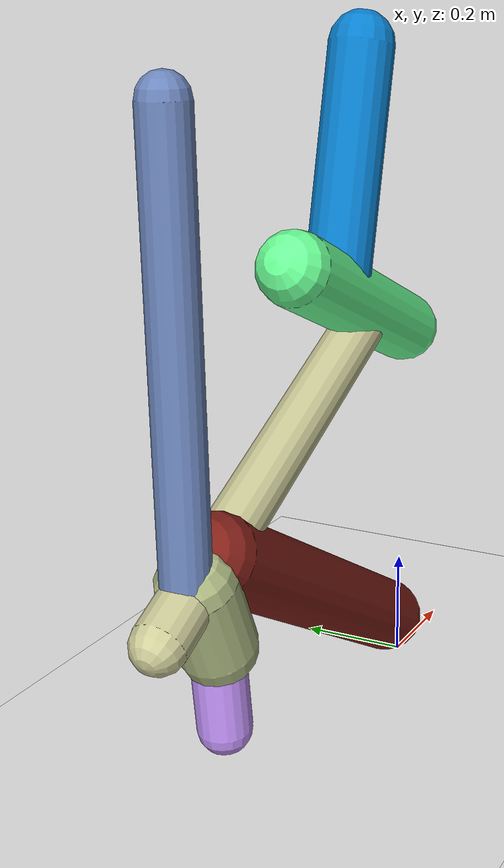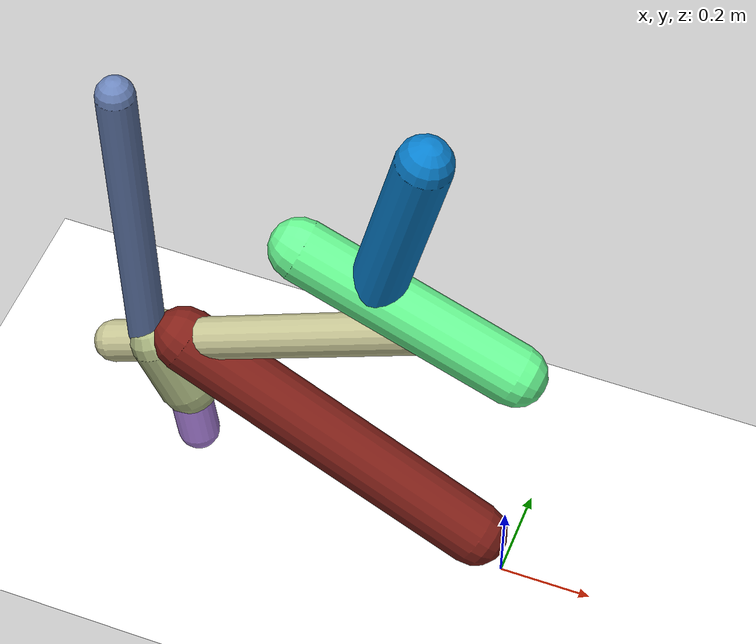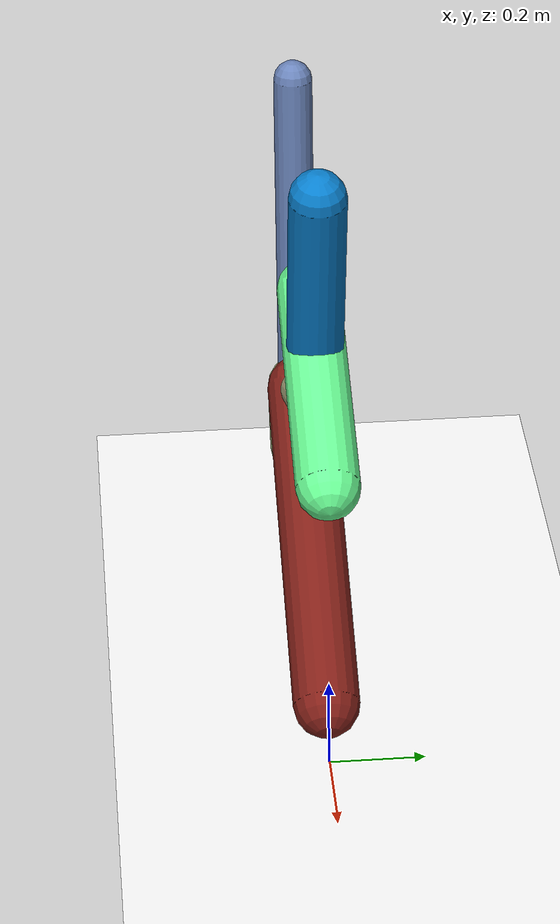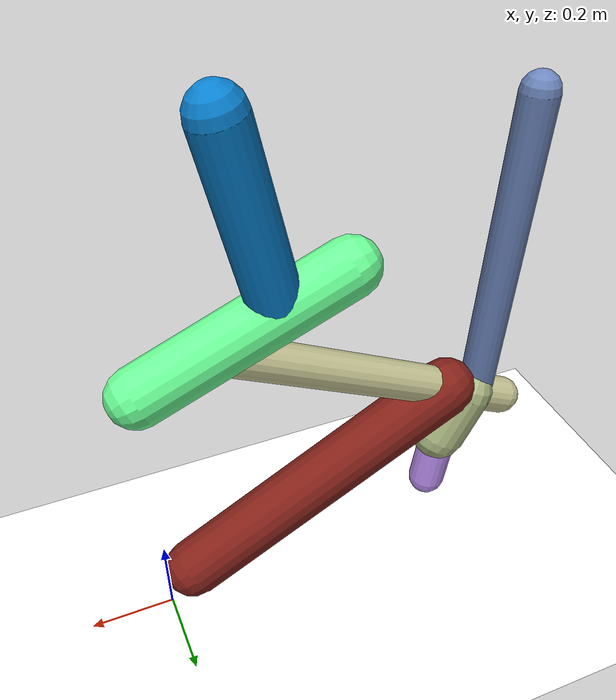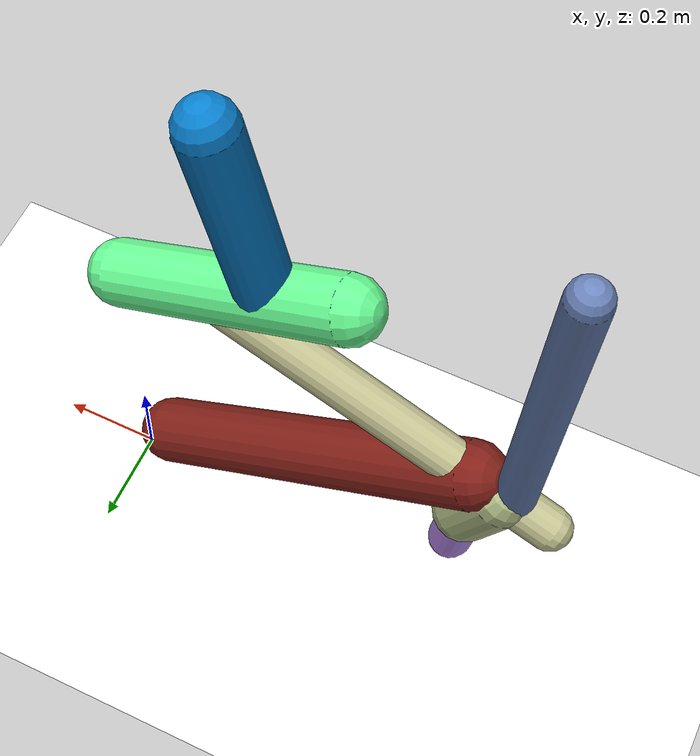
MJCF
<mujoco model="morphology">
  <option timestep="0.01"/>
  <default>
    <default class="/"/>
    <default class="0/"/>
    <default class="0/1/"/>
    <default class="0/1/2/"/>
    <default class="0/1/3/"/>
    <default class="0/1/3/4/"/>
    <default class="0/1/5/"/>
    <default class="0/6/"/>
  </default>
  <asset>
    <texture name="texplane" type="2d" builtin="checker" rgb1="0.10000000000000001 0.20000000000000001 0.29999999999999999" rgb2="0.20000000000000001 0.29999999999999999 0.40000000000000002" width="300" height="300"/>
    <material name="MatPlane" class="/" texture="texplane" texrepeat="20 20" specular="1" shininess="1" reflectance="0.5"/>
  </asset>
  <worldbody>
    <light name="//unnamed_light_0" class="/" directional="true" pos="0 0 1.5" dir="0 0 -1.3" cutoff="100" exponent="1" diffuse="1 1 1" specular="0.10000000000000001 0.10000000000000001 0.10000000000000001"/>
    <geom name="ground" class="/" type="plane" size="15 15 0.5" material="MatPlane" rgba="1 1 1 1"/>
    <site name="body" class="/" size="9.9999999999999995e-07 9.9999999999999995e-07 9.9999999999999995e-07" pos="0 0 0.67786321640014646"/>
    <body pos="0 0 0.67786321640014646" name="0/">
      <joint name="0/rootx/" class="/" type="slide" axis="1 0 0" limited="false" stiffness="0" armature="0" damping="0"/>
      <joint name="0/rootz/" class="/" type="slide" axis="0 0 1" limited="false" stiffness="0" armature="0" damping="0"/>
      <joint name="0/rooty/" class="/" type="hinge" axis="0 1 0" limited="false" stiffness="0" armature="0" damping="0"/>
      <geom name="0/geom" class="0/" type="capsule" contype="1" conaffinity="1" condim="3" size="0.064944910443739443" rgba="0.41411321013210556 0.99745949883026153 0.58448285357718233 1" friction="0.59999999999999998 0.10000000000000001 0.10000000000000001" fromto="0 0 0 -0.45572035966440932 0 0.18765935759767205"/>
      <site name="0/end0" class="0/" size="0.0050000000000000001" pos="-0.45572035966440932 0 0.18765935759767205"/>
      <site name="0/attach1" class="0/" size="9.9999999999999995e-07 9.9999999999999995e-07 9.9999999999999995e-07" pos="-0.15769498138384347 0 0.064936617983583272"/>
      <body pos="-0.15769498138384347 0 0.064936617983583272" name="0/1/">
        <joint name="0/1/joint/" class="0/" type="hinge" axis="0 1 0" limited="true" range="-36.522017463616059 36.522017463616059"/>
        <geom name="0/1/geom" class="0/1/" type="capsule" contype="1" conaffinity="1" condim="3" size="0.045546835671093355" rgba="0.79456336121585869 0.78906832731348275 0.59436501119767238 1" friction="0.59999999999999998 0.10000000000000001 0.10000000000000001" fromto="0 0 0 -0.72781076427511193 0 -0.35633000219545691"/>
        <site name="0/1/end1" class="0/1/" size="0.0050000000000000001" pos="-0.72781076427511193 0 -0.35633000219545691"/>
        <site name="0/1/attach2" class="0/1/" size="9.9999999999999995e-07 9.9999999999999995e-07 9.9999999999999995e-07" pos="-0.64880282176354076 0 -0.31764838094100001"/>
        <body pos="-0.64880282176354076 0 -0.31764838094100001" name="0/1/2/">
          <joint name="0/1/2/joint/" class="0/1/" type="hinge" axis="0 1 0" limited="true" range="-58.407485762353495 58.407485762353495"/>
          <geom name="0/1/2/geom" class="0/1/2/" type="capsule" contype="1" conaffinity="1" condim="3" size="0.040664561041398067" rgba="0.4153202516387583 0.51502436840408494 0.72576859279020989 1" friction="0.59999999999999998 0.10000000000000001 0.10000000000000001" fromto="0 0 0 -0.025508967980991004 0 0.73030561387592474"/>
          <site name="0/1/2/end2" class="0/1/2/" size="0.0050000000000000001" pos="-0.025508967980991004 0 0.73030561387592474"/>
        </body>
        <site name="0/1/attach3" class="0/1/" size="9.9999999999999995e-07 9.9999999999999995e-07 9.9999999999999995e-07" pos="-0.62150079751814058 0 -0.30428154049725725"/>
        <body pos="-0.62150079751814058 0 -0.30428154049725725" name="0/1/3/">
          <joint name="0/1/3/joint/" class="0/1/" type="hinge" axis="0 1 0" limited="true" range="-51.55385600269689 51.55385600269689"/>
          <geom name="0/1/3/geom" class="0/1/3/" type="capsule" contype="1" conaffinity="1" condim="3" size="0.065377533329692553" rgba="0.68500171889207784 0.73284916519309229 0.51693954436896528 1" friction="0.59999999999999998 0.10000000000000001 0.10000000000000001" fromto="0 0 0 0.059016829161120499 0 -0.12316393095629496"/>
          <site name="0/1/3/end3" class="0/1/3/" size="0.0050000000000000001" pos="0.059016829161120499 0 -0.12316393095629496"/>
          <site name="0/1/3/attach4" class="0/1/3/" size="9.9999999999999995e-07 9.9999999999999995e-07 9.9999999999999995e-07" pos="0.055968108198009618 0 -0.11680146683304506"/>
          <body pos="0.055968108198009618 0 -0.11680146683304506" name="0/1/3/4/">
            <joint name="0/1/3/4/joint/" class="0/1/3/" type="hinge" axis="0 1 0" limited="true" range="-40.174059643472035 40.174059643472035"/>
            <geom name="0/1/3/4/geom" class="0/1/3/4/" type="capsule" contype="1" conaffinity="1" condim="3" size="0.045194558482950058" rgba="0.75316200445708148 0.56844185616652354 0.96555339372492843 1" friction="0.59999999999999998 0.10000000000000001 0.10000000000000001" fromto="0 0 0 0.020820601976447861 0 -0.1549004888128207"/>
            <site name="0/1/3/4/end4" class="0/1/3/4/" size="0.0050000000000000001" pos="0.020820601976447861 0 -0.1549004888128207"/>
          </body>
        </body>
        <site name="0/1/attach5" class="0/1/" size="9.9999999999999995e-07 9.9999999999999995e-07 9.9999999999999995e-07" pos="-0.5633893520912695 0 -0.27583066769770226"/>
        <body pos="-0.5633893520912695 0 -0.27583066769770226" name="0/1/5/">
          <geom name="0/1/5/geom" class="0/1/5/" type="capsule" contype="1" conaffinity="1" condim="3" size="0.06989046368719061" rgba="0.50748966344180724 0.12550723309338452 0.096494651069360171 1" friction="0.59999999999999998 0.10000000000000001 0.10000000000000001" fromto="0 0 0 0.6575361555800292 0 -0.36696914726682128"/>
          <site name="0/1/5/end5" class="0/1/5/" size="0.0050000000000000001" pos="0.6575361555800292 0 -0.36696914726682128"/>
        </body>
      </body>
      <site name="0/attach6" class="0/" size="9.9999999999999995e-07 9.9999999999999995e-07 9.9999999999999995e-07" pos="-0.30011602692086342 0 0.1235836398843545"/>
      <body pos="-0.30011602692086342 0 0.1235836398843545" name="0/6/">
        <joint name="0/6/joint/" class="0/" type="hinge" axis="0 1 0" limited="true" range="-53.750697266679381 53.750697266679381"/>
        <geom name="0/6/geom" class="0/6/" type="capsule" contype="1" conaffinity="1" condim="3" size="0.058060241267962914" rgba="0.030313683004571046 0.49454204526401579 0.79741715607180941 1" friction="0.59999999999999998 0.10000000000000001 0.10000000000000001" fromto="0 0 0 0.096112914384043346 0 0.41009455055142041"/>
        <site name="0/6/end6" class="0/6/" size="0.0050000000000000001" pos="0.096112914384043346 0 0.41009455055142041"/>
      </body>
      <camera name="0/side" class="0/" mode="trackcom" pos="0.40000000000000002 -4 0.20000000000000001" quat="0.70699999999999996 0.70699999999999996 0 0"/>
    </body>
  </worldbody>
  <actuator>
    <motor name="0/1/motor" class="0/1/" ctrllimited="true" ctrlrange="-1 1" gear="88" joint="0/1/joint/"/>
    <motor name="0/1/2/motor" class="0/1/2/" ctrllimited="true" ctrlrange="-1 1" gear="82" joint="0/1/2/joint/"/>
    <motor name="0/1/3/motor" class="0/1/3/" ctrllimited="true" ctrlrange="-1 1" gear="74" joint="0/1/3/joint/"/>
    <motor name="0/1/3/4/motor" class="0/1/3/4/" ctrllimited="true" ctrlrange="-1 1" gear="78" joint="0/1/3/4/joint/"/>
    <motor name="0/6/motor" class="0/6/" ctrllimited="true" ctrlrange="-1 1" gear="87" joint="0/6/joint/"/>
  </actuator>
  <sensor>
    <subtreelinvel name="velocity" body="0/"/>
  </sensor>
</mujoco>
